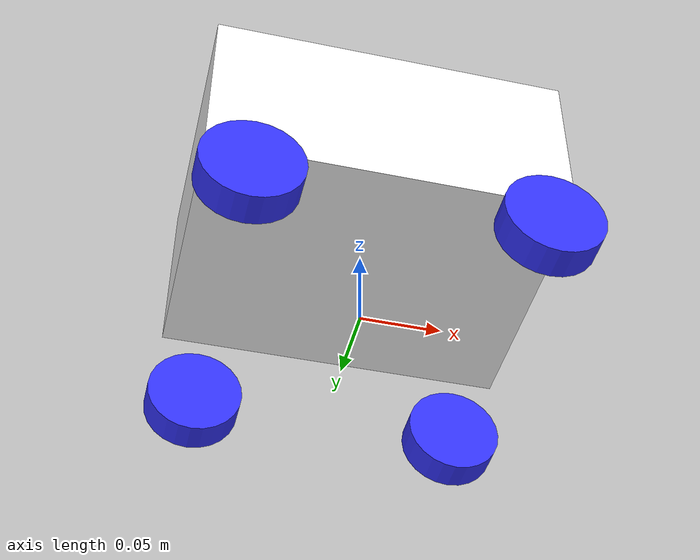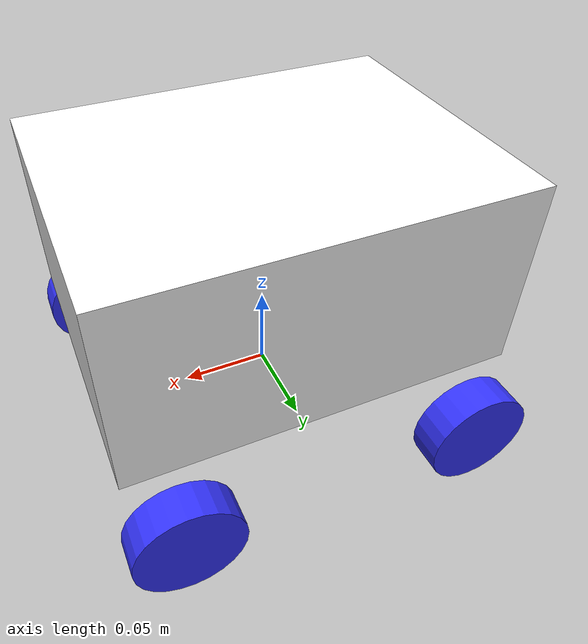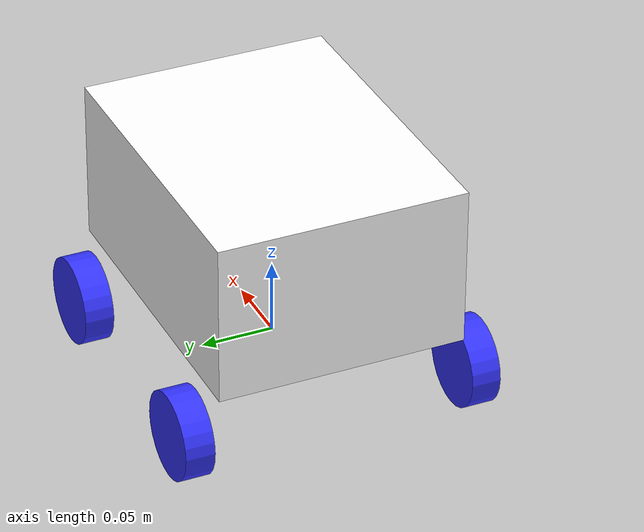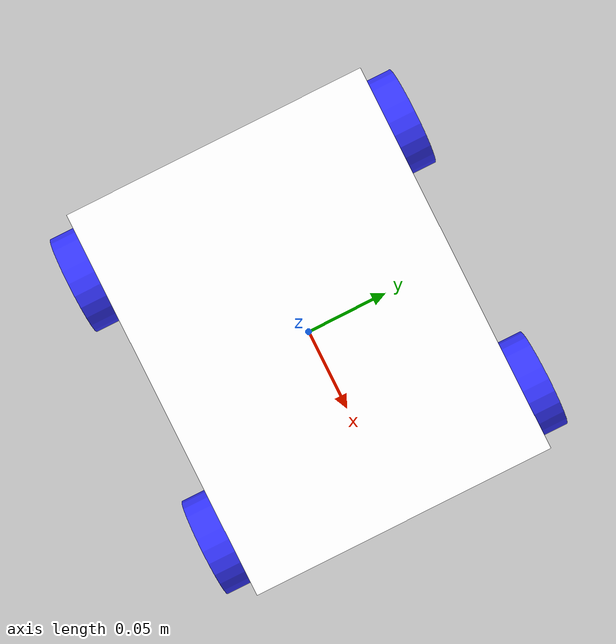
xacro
<?xml version="1.0"?>
<!-- Basic differential drive mobile base -->
<robot xmlns:xacro="http://www.ros.org/wiki/xacro" name="diffdrive_robot">
  <xacro:arg name="prefix" default="" />
  <xacro:arg name="use_mock_hardware" default="false" />

  <xacro:include filename="robot_core.xacro" />

  <!-- Import diffbot ros2_control description -->
  <xacro:include filename="$(find mecanum_drive_stm)/ros2_control/diffbot.ros2_control.xacro" />

  <xacro:diffbot_ros2_control
    name="DiffBot" prefix="$(arg prefix)" use_mock_hardware="$(arg use_mock_hardware)"/>

</robot>

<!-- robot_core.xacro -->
<robot xmlns:xacro="http://www.ros.org/wiki/xacro">

    <xacro:include filename="inertial_macros.xacro"/>

    <material name="white">
        <color rgba="1 1 1 1"/>
    </material>

    <material name="orange">
        <color rgba="1 0.3 0.1 1"/>
    </material>

    <material name="blue">
        <color rgba="0.2 0.2 1 1"/>
    </material>

    <material name="black">
        <color rgba="0 0 0 1"/>
    </material>

    <!-- BASE LINK-->

    <link name="base_link">

    </link>

    <joint name="chassis_joint" type="fixed">
        <parent link="base_link"/>
        <child link="chassis"/>
        <origin xyz="-0.11 0.0 0.0"/>
    </joint>

    <!-- CHASSIS LINK-->

    <link name="chassis">
        <visual>
            <origin xyz="0.11 0 0.090"/>
            <geometry>
                <box size="0.22 0.17 0.11"/>
            </geometry>
            <material name="white"/>
        </visual>
        <collision>
            <origin xyz="0.11 0 0.090"/>
            <geometry>
                <box size="0.22 0.17 0.11"/>
            </geometry>
        </collision>
        <xacro:inertial_box mass="0.5" x="0.22" y="0.17" z="0.11">
        <origin xyz="0.11 0 0.090" rpy="0 0 0" />
        </xacro:inertial_box>
    </link>

    <gazebo reference="chassis">
        <material>Gazebo/White</material>
    </gazebo>

    <!-- LEFT WHEEL LINK-->

                <!-- FRONT -->

    <joint name="front_left_wheel_joint" type="continuous">
        <parent link="base_link"/>
        <child link="front_left_wheel"/>
        <origin xyz="0.085 0.1 0" rpy="-${pi/2} 0 0"/>
        <axis xyz="0.0 0.0 1.0"/>
    </joint>

    <link name="front_left_wheel">
    <visual>
        <geometry>
            <cylinder radius="0.03" length="0.02"/>
        </geometry>
        <material name="blue"/>
    </visual>
    <collision>
        <geometry>
            <sphere radius="0.03"/>
        </geometry>
    </collision>
    <xacro:inertial_cylinder mass="0.1" length="0.02" radius="0.03">
        <origin xyz="0 0 0" rpy="0 0 0"/>
    </xacro:inertial_cylinder>
    </link>

    <gazebo reference="front_left_wheel">
        <material>Gazebo/Blue</material>
    </gazebo>

                <!-- BACK -->

    <joint name="back_left_wheel_joint" type="continuous">
        <parent link="base_link"/>
        <child link="back_left_wheel"/>
        <origin xyz="-0.085 0.1 0" rpy="-${pi/2} 0 0"/>
        <axis xyz="0.0 0.0 1.0"/>
    </joint>

    <link name="back_left_wheel">
    <visual>
        <geometry>
            <cylinder radius="0.03" length="0.02"/>
        </geometry>
        <material name="blue"/>
    </visual>
    <collision>
        <geometry>
            <sphere radius="0.03"/>
        </geometry>
    </collision>
    <xacro:inertial_cylinder mass="0.1" length="0.02" radius="0.03">
        <origin xyz="0 0 0" rpy="0 0 0"/>
    </xacro:inertial_cylinder>
    </link>

    <gazebo reference="back_left_wheel">
        <material>Gazebo/Blue</material>
    </gazebo>

    <!-- RIGHT WHEEL LINK-->

            <!--FRONT-->
    <joint name="front_right_wheel_joint" type="continuous">
        <parent link="base_link"/>
        <child link="front_right_wheel"/>
        <origin xyz="0.085 -0.1 0" rpy="${pi/2} 0 0"/>
        <axis xyz="0.0 0.0 -1.0"/>
    </joint>

    <link name="front_right_wheel">
    <visual>
        <geometry>
            <cylinder radius="0.03" length="0.02"/>
        </geometry>
        <material name="blue"/>
    </visual>
    <collision>
        <geometry>
            <sphere radius="0.03"/>
        </geometry>
    </collision>
    <xacro:inertial_cylinder mass="0.1" length="0.02" radius="0.03">
        <origin xyz="0 0 0" rpy="0 0 0"/>
    </xacro:inertial_cylinder>
    </link>
    <gazebo reference="front_right_wheel">
        <material>Gazebo/Blue</material>
    </gazebo>

            <!--BACK-->
    <joint name="back_right_wheel_joint" type="continuous">
        <parent link="base_link"/>
        <child link="back_right_wheel"/>
        <origin xyz="-0.085 -0.1 0" rpy="${pi/2} 0 0"/>
        <axis xyz="0.0 0.0 -1.0"/>
    </joint>

    <link name="back_right_wheel">
    <visual>
        <geometry>
            <cylinder radius="0.03" length="0.02"/>
        </geometry>
        <material name="blue"/>
    </visual>
    <collision>
        <geometry>
            <sphere radius="0.03"/>
        </geometry>
    </collision>
    <xacro:inertial_cylinder mass="0.1" length="0.02" radius="0.03">
        <origin xyz="0 0 0" rpy="0 0 0"/>
    </xacro:inertial_cylinder>
    </link>
    <gazebo reference="back_right_wheel">
        <material>Gazebo/Blue</material>
    </gazebo>
</robot>
